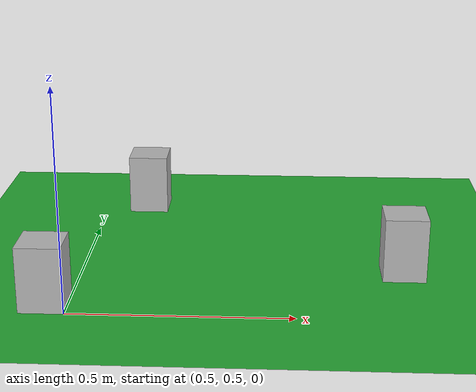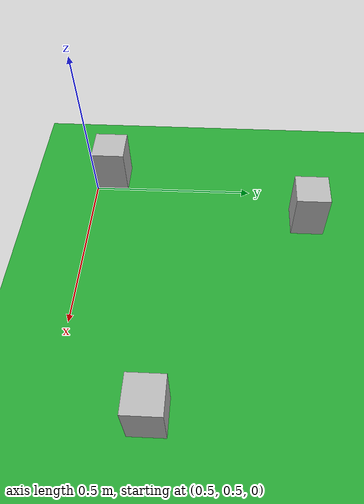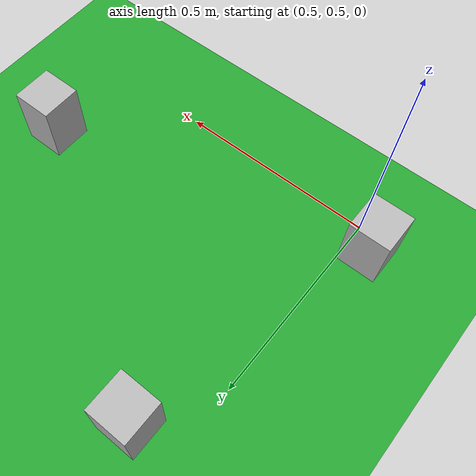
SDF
<?xml version="1.0" ?>
<sdf version="1.4">
  <world name="default">
    <include>
      <uri>model://ground_plane_custom</uri>
    </include>

    <include>
      <uri>model://sun</uri>
    </include>

    <include>
      <uri>model://obstacle</uri>
      <name>obstacle1</name>
      <pose>0.45 0.55 0.05 0 0 0</pose>
    </include>

    <include>
      <uri>model://obstacle</uri>
      <name>obstacle2</name>
      <pose>0.61 1.18 0.05 0 0 0</pose>
    </include>

    <include>
      <uri>model://obstacle</uri>
      <name>obstacle3</name>
      <pose>1.25 0.75 0.05 0 0 0</pose>
    </include>

  </world>
</sdf>

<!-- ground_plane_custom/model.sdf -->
<sdf version="1.5">
  <model name="ground_plane">
    <static>true</static>
    <link name="link">
      <collision name="collision">
        <geometry>
          <plane>
            <normal>0 0 1</normal>
            <size>100 100</size>
          </plane>
        </geometry>
        <surface>
          <friction>
            <ode>
              <mu>100</mu>
              <mu2>50</mu2>
            </ode>
          </friction>
        </surface>
      </collision>
      <visual name="visual">
        <cast_shadows>false</cast_shadows>
        <geometry>
          <plane>
            <normal>0 0 1</normal>
            <size>100 100</size>
          </plane>
        </geometry>
        <material>
          <script>
            <uri>file://media/materials/scripts/gazebo.material</uri>
            <name>Gazebo/GreenGlow</name>
          </script>
        </material>
      </visual>
    </link>
  </model>
</sdf>

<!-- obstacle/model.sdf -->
<sdf version="1.4">
  <model name="obstacle">
    <pose>0 0 0.05 0 0 0</pose>
    <static>true</static>
    <link name="link">
      <inertial>
        <mass>1.0</mass>
        <inertia> <!-- inertias are tricky to compute -->
          <!-- http://gazebosim.org/tutorials?tut=inertia&cat=build_robot -->
          <ixx>0.083</ixx>       <!-- for a box: ixx = 0.083 * mass * (y*y + z*z) -->
          <ixy>0.0</ixy>         <!-- for a box: ixy = 0 -->
          <ixz>0.0</ixz>         <!-- for a box: ixz = 0 -->
          <iyy>0.083</iyy>       <!-- for a box: iyy = 0.083 * mass * (x*x + z*z) -->
          <iyz>0.0</iyz>         <!-- for a box: iyz = 0 -->
          <izz>0.083</izz>       <!-- for a box: izz = 0.083 * mass * (x*x + y*y) -->
        </inertia>
      </inertial>
      <collision name="collision">
        <geometry>
          <box>
            <size>0.1 0.1 0.2</size>
          </box>
        </geometry>
      </collision>
      <visual name="visual">
        <geometry>
          <box>
            <size>0.1 0.1 0.2</size>
          </box>
        </geometry>
      </visual>
    </link>
  </model>
</sdf>
